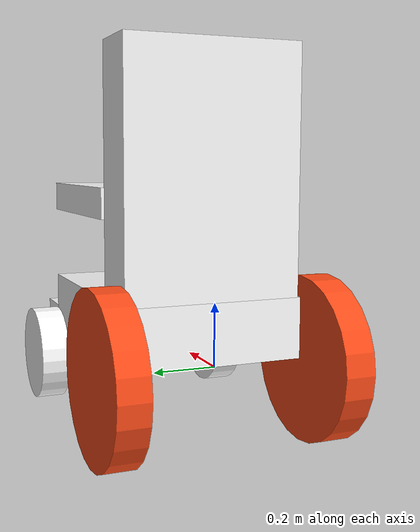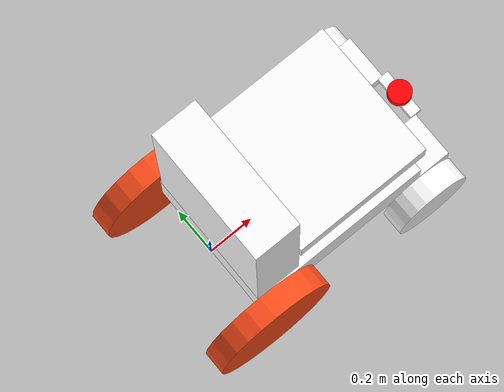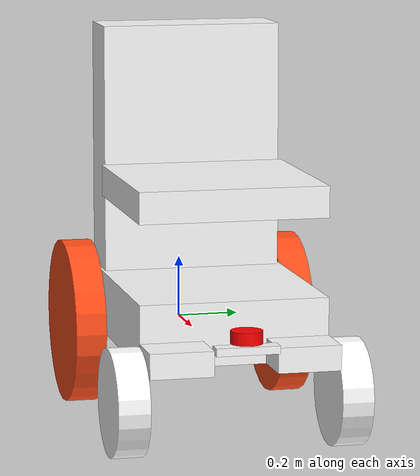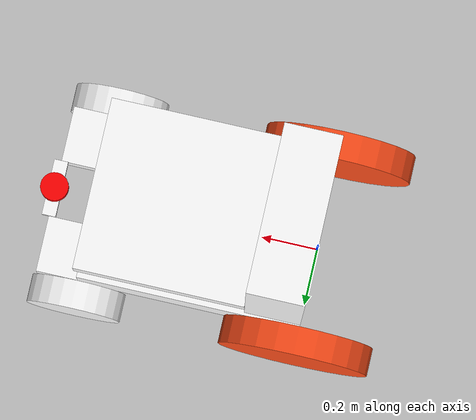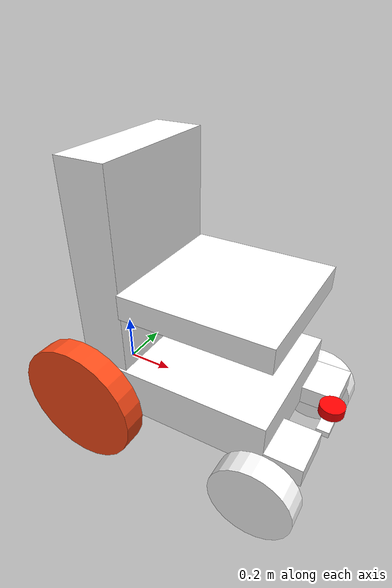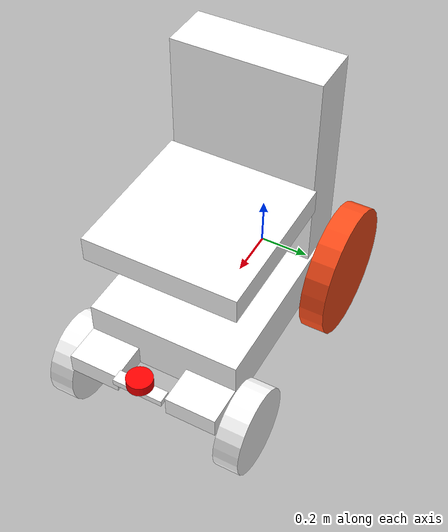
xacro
<?xml version="1.0"?>
<robot xmlns:xacro="http://www.ros.org/wiki/xacro" name="robot" >

    <xacro:include filename="$(find wheelchair_robot)/description/wheelchair_core.xacro"/>

    <xacro:include filename="$(find wheelchair_robot)/description/gazebo_control.xacro"/>

</robot>

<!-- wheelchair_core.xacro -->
<robot xmlns:xacro="http://www.ros.org/wiki/xacro">

    <xacro:include filename="$(find wheelchair_robot)/description/inertial_macros.xacro"/>
    <xacro:include filename="wheelchair_chassis.xacro"/>
    <xacro:include filename="wheelchair_wheel.xacro"/>
    <xacro:include filename="wheelchair_castor_wheel.xacro"/>
    <xacro:include filename="wheelchair_footrest.xacro"/>
    <xacro:include filename="wheelchair_lidar.xacro"/>
    <xacro:include filename="wheelchair_backrest.xacro"/>
    <xacro:include filename="wheelchair_seat.xacro"/>

    <xacro:property name="chassis_x" value="0.8" />
    <xacro:property name="chassis_y" value="0.6" />
    <xacro:property name="chassis_z" value="0.2" />
    <xacro:property name="seat_x" value="0.6" />
    <xacro:property name="seat_y" value="0.6" />
    <xacro:property name="seat_z" value="0.1" />
    <xacro:property name="footrest_x" value="0.15" />
    <xacro:property name="footrest_y" value="0.2" />
    <xacro:property name="footrest_z" value="0.08" />
    <xacro:property name="backrest_x" value="0.2" />
    <xacro:property name="backrest_y" value="0.58" />
    <xacro:property name="backrest_z" value="0.8" />

    <material name="white">
        <color rgba="1 1 1 1" />
    </material>

    <material name="orange">
        <color rgba="1 0.3 0.1 1" />
    </material>

    <material name="blue">
        <color rgba="0.2 0.2 1 1" />
    </material>

    <material name="black">
        <color rgba="0 0 0 1" />
    </material>

    <material name="red">
        <color rgba="1 0 0 1" />
    </material>

    <!-- It's standard in ros to callthe first link "base_link" -->
    <!-- For differential driver robot, it's position should be between the rotation wheels because makes the calculation easier (insted of the center of the chassis) -->

    <!-- BASE LINK -->
    <link name="base_link"/>

    <!-- CHASSIS -->
    <xacro:wheelchair_chassis name="chassis" parent="base_link" xyz="0 0 0" rpy="0 0 0" chassis_x="${chassis_x}" chassis_y="${chassis_y}" chassis_z="${chassis_z}"/>

    <!-- WHEELS -->
    <xacro:wheelchair_wheel side="right" parent="base_link"  chassis_y="${chassis_y}" xyz="0 0 0" rpy="0 0 0" radius="0.27" width="0.1"/>
    <xacro:wheelchair_wheel side="left"  parent="base_link"  chassis_y="${chassis_y}" xyz="0 0 0" rpy="0 0 0" radius="0.27" width="0.1"/>

    <!-- CASTOR WHEEL -->
    <xacro:wheelchair_castor_wheel side="left" parent="chassis"  chassis_x="${chassis_x}" chassis_y="${chassis_y}" offset_z="-0.1" xyz="0 0 0" rpy="0 0 0" radius="0.17" width="0.1"/>
    <xacro:wheelchair_castor_wheel side="right" parent="chassis"  chassis_x="${chassis_x}" chassis_y="${chassis_y}" offset_z="-0.1" xyz="0 0 0" rpy="0 0 0" radius="0.17" width="0.1"/>

    <!-- BACKREST -->
    <xacro:wheelchair_backrest name="backrest" parent="chassis" backrest_x="${backrest_x}" backrest_y="${backrest_y}" backrest_z="${backrest_z}" x="${backrest_x/2}" y="0" z="${backrest_z/2 + chassis_z}" rpy="0 0 0"/>
    <!-- SEAT -->
    <xacro:wheelchair_seat name="seat" parent="chassis" seat_x="${seat_x}" seat_y="${seat_y}" seat_z="${seat_z}" x="${backrest_x + seat_x/2}" y="0" z="0.5" rpy="0 0 0"/>

    <!-- FOOTREST -->
    <xacro:wheelchair_footrest side="left" parent="chassis" fr_x="${footrest_x}" fr_y="${footrest_y}" fr_z="${footrest_z}" x="${chassis_x}" y="${chassis_y}" z="${chassis_z}" rpy="0 0 0"/>
    <xacro:wheelchair_footrest side="right" parent="chassis" fr_x="${footrest_x}" fr_y="${footrest_y}" fr_z="${footrest_z}" x="${chassis_x}" y="${chassis_y}" z="${chassis_z}" rpy="0 0 0"/>

    <!-- LIDAR -->
    <xacro:wheelchair_lidar name="lidar" parent="chassis" support_x="0.05" support_y="${chassis_y - 2*footrest_y}" support_z="0.025" x="${chassis_x + footrest_x}" y="0" z="${footrest_z}" rpy="0 0 0"/>
    <!-- lidar support

    lidar -->

</robot>

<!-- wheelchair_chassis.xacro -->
<robot xmlns:xacro="http://ros.org/wiki/xacro">
    <xacro:property name="M_PI" value="3.1415926535897931" />

    <xacro:macro name="wheelchair_chassis" params="name parent chassis_x chassis_y chassis_z xyz rpy">

    <!-- Then, there is the chassis that is linked via a joint to the base_link -->
        <joint name="${parent}_${name}_joint" type="fixed">
            <origin xyz="${xyz}" rpy="${rpy}"/>
            <parent link="${parent}"/>
            <child link="${name}"/>
        </joint>

        <link name="${name}">
            <visual>
                <!-- Moving half of the lenght forward and half of the height upward -->
                <origin xyz="${chassis_x/2} 0 ${chassis_z/2}"/>
                <geometry>
                    <box size="${chassis_x} ${chassis_y} ${chassis_z}"/>
                </geometry>
                <material name="white"/>
            </visual>
            <collision>
                <!-- Moving half of the lenght forward and half of the height upward -->
                <origin xyz="${chassis_x/2} 0 ${chassis_z/2}"/>
                <geometry>
                    <box size="${chassis_x} ${chassis_y} ${chassis_z}"/>
                </geometry>
            </collision>
            <!-- Mass specified by us. x y z, origin taken from visual tag. -->
            <xacro:inertial_box mass="0.5" x="${chassis_x}" y="${chassis_y}" z="${chassis_z}">
                <origin xyz="0 0 0" rpy="0 0 0"/>
            </xacro:inertial_box>
        </link>
        <!-- FOR EVERY VISUAL, INCLUDE THE FOLLOWING TO REFLECT IT ON GAZEBO -->
        <gazebo reference="${name}">
            <material value="Gazebo/White"/>
        </gazebo>

  <!-- Chassis -->

  <!-- Top -->

    </xacro:macro>

</robot>

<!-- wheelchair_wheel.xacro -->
<robot xmlns:xacro="http://ros.org/wiki/xacro">
    <property name="M_PI" value="3.1415926535897931" />

    <xacro:macro name="wheelchair_wheel" params="side parent chassis_y xyz rpy radius width">

        <!-- Usually, we link the wheels to the base_link (and not to the chassis) since easier to deal with -->
        <joint name="${side}_wheel_joint" type="continuous">
            <parent link="${parent}" />
            <child link="${side}_wheel" />
            <!-- By default, the wheel is placed where the base_link is. So, we need to move along y and rotate along x (rpy = roll, pitch, yaw)-->
            <xacro:if value="${side == 'left'}">
                <origin xyz="0 ${chassis_y/2 + width/2} 0" rpy="-${pi/2} 0 0"/>
                <!-- Axis of rotation -> lx wheel (so as rx wheel) spins on z axis. Then, when lx moves forward, it spins anti-clockwise (so +) looking at z when it's pointing out -->
                <axis xyz="0 0 1" />
            </xacro:if>
            <xacro:unless value="${side == 'left'}">
                <origin xyz="0 -${chassis_y/2 + width/2} 0" rpy="${pi/2} 0 0"/>
                <!-- Axis of rotation -> rx wheel (so as lx wheel) spins on z axis. Then, when rx moves forward, it spins clockwise (so -) looking at z when it's pointing out -->
                <axis xyz="0 0 -1" />
            </xacro:unless>

        </joint>

        <link name="${side}_wheel">
            <visual>
                <geometry>
                    <cylinder radius="${radius}" length="${width}"/>
                </geometry>
                <material name="orange"/>
            </visual>
            <collision>
                <geometry>
                    <cylinder radius="${radius}" length="${width}"/>
                </geometry>
            </collision>
            <!-- Mass specified by us. x y z, origin taken from visual tag (0 if not specified). -->
            <xacro:inertial_cylinder mass="0.1" radius="${radius}" length="${width}">
                <origin xyz="0 0 0" rpy="0 0 0"/>
            </xacro:inertial_cylinder>
        </link>
        <gazebo reference="${side}_wheel">
            <material value="Gazebo/Orange"/>
        </gazebo>

    </xacro:macro>

</robot>

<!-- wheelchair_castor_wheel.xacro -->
<robot xmlns:xacro="http://ros.org/wiki/xacro">
    <property name="M_PI" value="3.1415926535897931" />

    <xacro:macro name="wheelchair_castor_wheel" params="side parent chassis_x chassis_y offset_z xyz rpy radius width">

        <!-- Usually, we link the wheels to the base_link (and not to the chassis) since easier to deal with -->
        <joint name="${side}_castor_wheel_joint" type="fixed">
            <parent link="${parent}" />
            <child link="${side}_castor_wheel" />
            <!-- By default, the wheel is placed where the base_link is. So, we need to move along y and rotate along x (rpy = roll, pitch, yaw)-->
            <xacro:if value="${side == 'left'}">
                <origin xyz="${chassis_x} ${chassis_y/2 + width/2} ${offset_z}" rpy="-${pi/2} 0 0"/>
            </xacro:if>
            <xacro:unless value="${side == 'left'}">
                <origin xyz="${chassis_x} -${chassis_y/2 + width/2} ${offset_z}" rpy="${pi/2} 0 0"/>
            </xacro:unless>

        </joint>

        <link name="${side}_castor_wheel">
            <visual>
                <geometry>
                    <cylinder radius="${radius}" length="${width}"/>
                </geometry>
                <material name="white"/>
            </visual>
            <collision>
                <geometry>
                    <cylinder radius="${radius}" length="${width}"/>
                </geometry>
            </collision>
            <!-- Mass specified by us. x y z, origin taken from visual tag (0 if not specified). -->
            <xacro:inertial_cylinder mass="0.1" radius="${radius}" length="${width}">
                <origin xyz="0 0 0" rpy="0 0 0"/>
            </xacro:inertial_cylinder>
        </link>

        <gazebo reference="${side}_castor_wheel">
            <material value="Gazebo/Black"/>
            <!-- Trick to make the caster wheel w/o (negligible) friction.. trick -->
            <mu1 value="0.001"/>
            <mu2 value="0.001"/>
        </gazebo>

    </xacro:macro>

</robot>

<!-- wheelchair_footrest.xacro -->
<robot xmlns:xacro="http://ros.org/wiki/xacro">
    <property name="M_PI" value="3.1415926535897931" />

    <xacro:macro name="wheelchair_footrest" params="side parent fr_x fr_y fr_z x y z rpy">

        <!-- Usually, we link the wheels to the base_link (and not to the chassis) since easier to deal with -->
        <joint name="${side}_footrest_joint" type="fixed">
            <parent link="${parent}" />
            <child link="${side}_footrest" />
            <!-- By default, the wheel is placed where the base_link is. So, we need to move along y and rotate along x (rpy = roll, pitch, yaw)-->
            <xacro:if value="${side == 'left'}">
                <origin xyz="${x + fr_x/2} ${y/2 - fr_y/2} ${fr_z/2}" rpy="0 0 0"/>
            </xacro:if>
            <xacro:unless value="${side == 'left'}">
                <origin xyz="${x + fr_x/2} -${y/2 - fr_y/2} ${fr_z/2}" rpy="0 0 0"/>
            </xacro:unless>

        </joint>

        <link name="${side}_footrest">
            <visual>
                <geometry>
                    <box size="${fr_x} ${fr_y} ${fr_z}"/>
                </geometry>
                <material name="white"/>
            </visual>
            <collision>
                <geometry>
                    <box size="${fr_x} ${fr_y} ${fr_z}"/>
                </geometry>
            </collision>
            <!-- Mass specified by us. x y z, origin taken from visual tag. -->
            <xacro:inertial_box mass="0.5" x="${fr_x}" y="${fr_y}" z="${fr_z}">
                <origin xyz="0 0 0" rpy="0 0 0"/>
            </xacro:inertial_box>
        </link>
        <!-- FOR EVERY VISUAL, INCLUDE THE FOLLOWING TO REFLECT IT ON GAZEBO -->
        <gazebo reference="${side}_footrest">
            <material value="Gazebo/White"/>
        </gazebo>

    </xacro:macro>

</robot>

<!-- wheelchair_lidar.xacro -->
<robot xmlns:xacro="http://ros.org/wiki/xacro">
    <!-- both are referring to cylinder simulating lidar visual -->
    <xacro:property name="radius_lidar_object" value="0.05" />
    <xacro:property name="length_lidar_object" value="0.04" />

    <xacro:macro name="wheelchair_lidar" params="name parent support_x support_y support_z x y z rpy">

    <!-- Then, there is the chassis that is linked via a joint to the base_link -->
        <joint name="${parent}_${name}_support_joint" type="fixed">
            <origin xyz="${x} ${y} ${z}" rpy="${rpy}"/>
            <parent link="${parent}"/>
            <child link="${name}_support"/>
        </joint>

        <link name="${name}_support">
            <visual>
                <origin xyz="0 0 0"/>
                <geometry>
                    <box size="${support_x} ${support_y} ${support_z}"/>
                </geometry>
                <material name="white"/>
            </visual>
            <collision>
                <origin xyz="0 0 0"/>
                <geometry>
                    <box size="${support_x} ${support_y} ${support_z}"/>
                </geometry>
            </collision>
            <!-- Mass specified by us. x y z, origin taken from visual tag. -->
            <xacro:inertial_box mass="0.5" x="${support_x}" y="${support_y}" z="${support_z}">
                <origin xyz="0 0 0" rpy="0 0 0"/>
            </xacro:inertial_box>
        </link>
        <!-- FOR EVERY VISUAL, INCLUDE THE FOLLOWING TO REFLECT IT ON GAZEBO -->
        <gazebo reference="${name}_support">
            <material value="Gazebo/White"/>
        </gazebo>

        <joint name="laser_frame_${name}_support_joint" type="fixed">
            <parent link="${name}_support"/>
            <!-- called laser_frame (and not _link) for well known convention -->
            <child link="laser_frame"/>
            <!-- since origin of chassis is in the back -->
            <origin xyz="0 0 ${length_lidar_object}" rpy="0 0 0"/>
        </joint>

        <link name="laser_frame">
            <visual>
                <geometry>
                    <cylinder radius="${radius_lidar_object}" length="${length_lidar_object}"/>
                </geometry>
                <material name="red"/>
            </visual>
            <collision>
                <geometry>
                    <cylinder radius="${radius_lidar_object}" length="${length_lidar_object}"/>
                </geometry>
            </collision>
            <!-- Mass specified by us. x y z, origin taken from visual tag (0 if not specified). -->
            <xacro:inertial_cylinder mass="0.1" radius="${radius_lidar_object}" length="${length_lidar_object}">
                <origin xyz="0 0 0" rpy="0 0 0"/>
            </xacro:inertial_cylinder>
        </link>

        <!-- Gazebo tag to make it interacting with Gazebo -->

        <gazebo reference="laser_frame">
            <material>Gazebo/Red</material>

            <!-- type ray is a gazebo type -->
            <sensor name="laser" type="ray">
                <!-- place it at the origin of the reference -->
                <pose> 0 0 0 0 0 0 </pose>
                <visualize>true</visualize>
                <update_rate>10</update_rate>
                <ray>
                    <scan>
                        <horizontal>
                            <samples>360</samples>
                            <min_angle>-1.57</min_angle>
                            <max_angle>1.57</max_angle>
                        </horizontal>
                    </scan>
                    <range>
                        <min>0.3</min>
                        <max>12</max>
                    </range>
                </ray>
                <!-- plugin to make gazebo speak with ros -->
                <plugin name="laser_controller" filename="libgazebo_ros_ray_sensor.so">
                    <ros>
                        <!-- topic = "scan" -->
                        <argument>~/out:=scan</argument>
                    </ros>
                    <output_type>sensor_msgs/LaserScan</output_type>
                    <frame_name>laser_frame</frame_name>
                </plugin>
            </sensor>
        </gazebo>

    </xacro:macro>

</robot>

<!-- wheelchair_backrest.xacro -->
<robot xmlns:xacro="http://ros.org/wiki/xacro">
    <xacro:property name="M_PI" value="3.1415926535897931" />

    <xacro:macro name="wheelchair_backrest" params="name parent backrest_x backrest_y backrest_z x y z rpy">

        <joint name="${parent}_${name}_joint" type="fixed">
            <origin xyz="${x} ${y} ${z}" rpy="${rpy}"/>
            <parent link="${parent}"/>
            <child link="${name}"/>
        </joint>

        <link name="${name}">
            <visual>
                <geometry>
                    <box size="${backrest_x} ${backrest_y} ${backrest_z}"/>
                </geometry>
                <material name="white"/>
            </visual>
            <collision>
                <geometry>
                    <box size="${backrest_x} ${backrest_y} ${backrest_z}"/>
                </geometry>
            </collision>
            <!-- Mass specified by us. x y z, origin taken from visual tag. -->
            <xacro:inertial_box mass="0.5" x="${backrest_x}" y="${backrest_y}" z="${backrest_z}">
                <origin xyz="0 0 0" rpy="0 0 0"/>
            </xacro:inertial_box>
        </link>
        <!-- FOR EVERY VISUAL, INCLUDE THE FOLLOWING TO REFLECT IT ON GAZEBO -->
        <gazebo reference="${name}">
            <material value="Gazebo/White"/>
        </gazebo>

    </xacro:macro>

</robot>

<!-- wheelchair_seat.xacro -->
<robot xmlns:xacro="http://ros.org/wiki/xacro">
    <xacro:property name="M_PI" value="3.1415926535897931" />

    <xacro:macro name="wheelchair_seat" params="name parent seat_x seat_y seat_z x y z rpy">

        <joint name="${parent}_${name}_joint" type="fixed">
            <origin xyz="${x} ${y} ${z}" rpy="${rpy}"/>
            <parent link="${parent}"/>
            <child link="${name}"/>
        </joint>

        <link name="${name}">
            <visual>
                <geometry>
                    <box size="${seat_x} ${seat_y} ${seat_z}"/>
                </geometry>
                <material name="white"/>
            </visual>
            <collision>
                <geometry>
                    <box size="${seat_x} ${seat_y} ${seat_z}"/>
                </geometry>
            </collision>
            <!-- Mass specified by us. x y z, origin taken from visual tag. -->
            <xacro:inertial_box mass="0.5" x="${seat_x}" y="${seat_y}" z="${seat_z}">
                <origin xyz="0 0 0" rpy="0 0 0"/>
            </xacro:inertial_box>
        </link>
        <!-- FOR EVERY VISUAL, INCLUDE THE FOLLOWING TO REFLECT IT ON GAZEBO -->
        <gazebo reference="${name}">
            <material value="Gazebo/White"/>
        </gazebo>

    </xacro:macro>

</robot>
